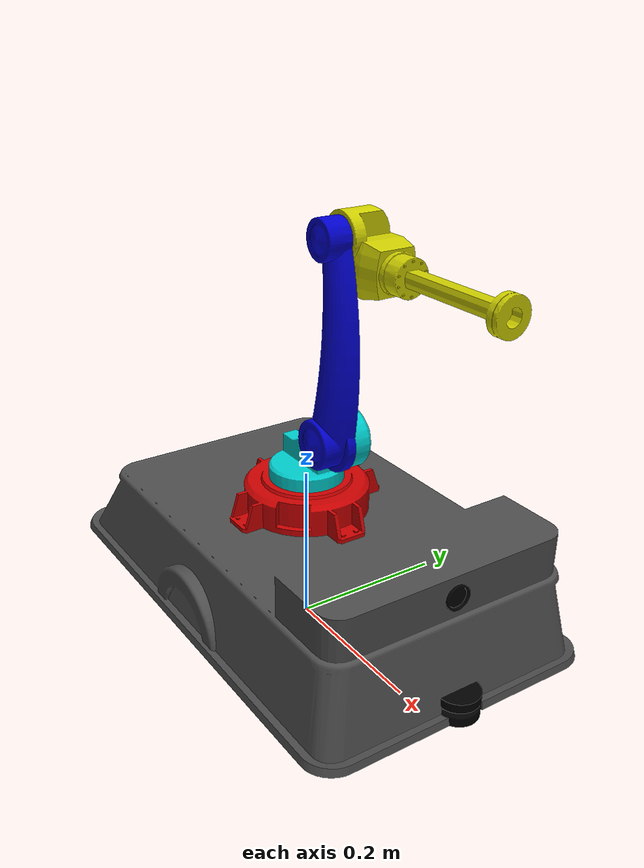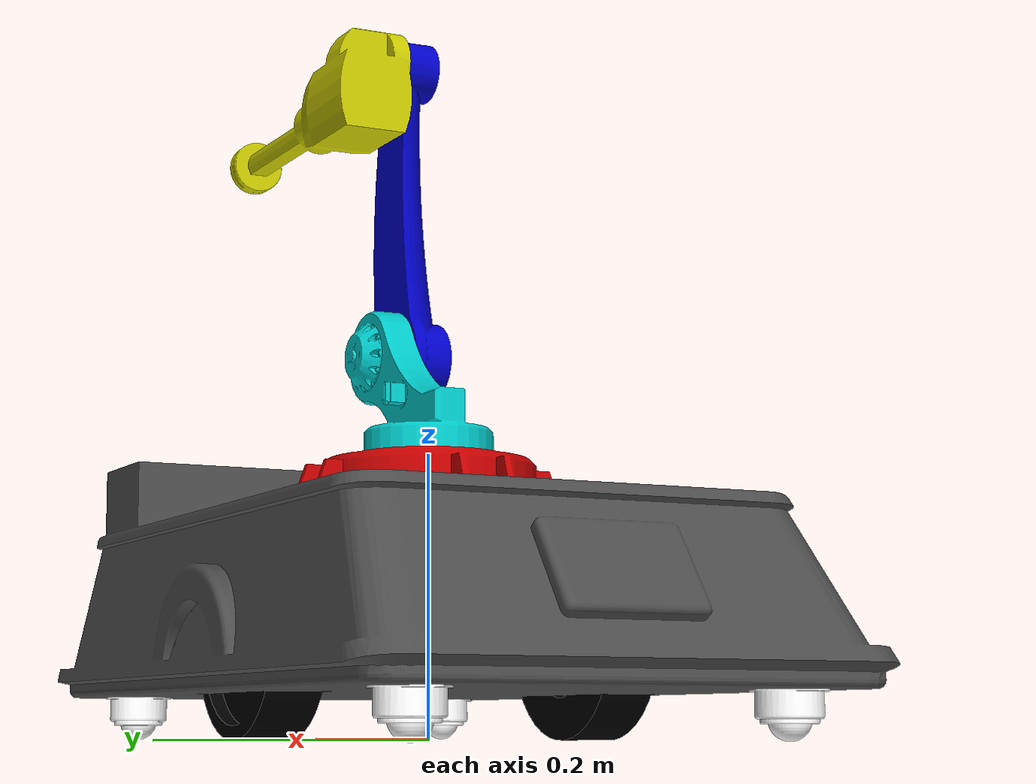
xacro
<?xml version="1.0" encoding="utf-8"?>

<robot name="my_robot" xmlns:xacro="http://www.ros.org/wiki/xacro">
  <xacro:include filename="gazebo_plugin.xacro" />
  <xacro:include filename="common_properties.xacro" />
  <xacro:include filename="sensor.xacro" />

  <link name="base_footprint"/>

  <link name="base_link">
    <inertial>
      <origin xyz="0.0258859914894434 3.29115135206288E-05 0.0298218101468012" rpy="0 0 0" />
      <mass value="12.1175273859003" />
      <inertia
        ixx="0.151183135861082"
        ixy="6.45365793468062E-05"
        ixz="-0.00229495720006062"
        iyy="0.366496182031275"
        iyz="-3.59840732929561E-06"
        izz="0.506268750088202" />
    </inertial>
    <visual>
      <origin xyz="0 0 0" rpy="0 0 0" />
      <geometry>
        <mesh filename="package://my_robot_description/meshes/base_link.STL" />
      </geometry>
      <material name="gray" />
    </visual>
    <collision>
      <origin xyz="0 0 0" rpy="0 0 0" />
      <geometry>
        <mesh filename="package://my_robot_description/meshes/base_link.STL" />
      </geometry>
    </collision>
  </link>

  <joint name="base_footprint_joint" type="fixed">
    <origin xyz="0 0 0.07" rpy="0 0 0" />
    <parent link="base_footprint" />
    <child link="base_link" />
    <axis xyz="0 0 0" />
  </joint>

  <link name="mat_trau1">
    <inertial>
      <origin xyz="0 0.0150076202241446 -2.77555756156289E-17" rpy="0 0 0" />
      <mass value="0.0343654070105222" />
      <inertia
        ixx="5.57345885585432E-06"
        ixy="-3.69458506277605E-22"
        ixz="4.5621677512871E-09"
        iyy="7.54003589309488E-06"
        iyz="8.77506497716904E-23"
        izz="5.86061271693657E-06" />
    </inertial>
    <visual>
      <origin xyz="0 0 0" rpy="0 0 0" />
      <geometry>
        <mesh filename="package://my_robot_description/meshes/mat_trau1.STL" />
      </geometry>
      <material name="white"/>
    </visual>
    <collision>
      <origin xyz="0 0 0" rpy="0 0 0" />
      <geometry>
        <mesh filename="package://my_robot_description/meshes/mat_trau1.STL" />
      </geometry>
    </collision>
  </link>

  <joint name="mat_trau1_joint" type="fixed">
    <origin xyz="-0.245 0.13 -0.0646" rpy="1.5707963267949 0 0" />
    <parent link="base_link" />
    <child link="mat_trau1" />
    <axis xyz="0 0 0" />
  </joint>

  <link name="mat_trau2">
    <inertial>
      <origin xyz="-2.77555756156289E-17 0.0150076202241446 0" rpy="0 0 0" />
      <mass value="0.0343654070105222" />
      <inertia
        ixx="5.57506973746302E-06"
        ixy="5.19498733814909E-22"
        ixz="2.19269083255048E-08"
        iyy="7.54003589309488E-06"
        iyz="1.18018593093102E-22"
        izz="5.85900183532788E-06" />
    </inertial>
    <visual>
      <origin xyz="0 0 0" rpy="0 0 0" />
      <geometry>
        <mesh filename="package://my_robot_description/meshes/mat_trau2.STL" />
      </geometry>
      <material name="white"/>
    </visual>
    <collision>
      <origin xyz="0 0 0" rpy="0 0 0" />
      <geometry>
        <mesh filename="package://my_robot_description/meshes/mat_trau2.STL" />
      </geometry>
    </collision>
  </link>

  <joint name="mat_trau2_joint" type="fixed">
    <origin xyz="-0.245 -0.13 -0.0646" rpy="1.5707963267949 0 0" />
    <parent link="base_link" />
    <child link="mat_trau2" />
    <axis xyz="0 0 0" />
  </joint>

  <link name="mat_trau3">
    <inertial>
      <origin xyz="0 0.0150076202241446 0" rpy="0 0 0" />
      <mass value="0.0343654070105222" />
      <inertia
        ixx="5.57447791879336E-06"
        ixy="-2.00711149933717E-22"
        ixz="-1.76749184706977E-08"
        iyy="7.54003589309488E-06"
        iyz="-3.68128463688666E-22"
        izz="5.85959365399754E-06" />
    </inertial>
    <visual>
      <origin xyz="0 0 0" rpy="0 0 0" />
      <geometry>
        <mesh filename="package://my_robot_description/meshes/mat_trau3.STL" />
      </geometry>
      <material name="white"/>
    </visual>
    <collision>
      <origin xyz="0 0 0" rpy="0 0 0" />
      <geometry>
        <mesh filename="package://my_robot_description/meshes/mat_trau3.STL" />
      </geometry>
    </collision>
  </link>

  <joint name="mat_trau3_joint" type="fixed">
    <origin xyz="0.245 0.13 -0.0646" rpy="1.5707963267949 0 3.14159265358979" />
    <parent link="base_link" />
    <child link="mat_trau3" />
    <axis xyz="0 0 0" />
  </joint>

  <link name="mat_trau4">
    <inertial>
      <origin xyz="0 0.0150076202241446 1.38777878078145E-17" rpy="0 0 0" />
      <mass value="0.0343654070105222" />
      <inertia
        ixx="5.57351483578567E-06"
        ixy="1.3638800286411E-21"
        ixz="-6.07330999259092E-09"
        iyy="7.54003589309489E-06"
        iyz="7.07475765544562E-22"
        izz="5.86055673700523E-06" />
    </inertial>
    <visual>
      <origin xyz="0 0 0" rpy="0 0 0" />
      <geometry>
        <mesh filename="package://my_robot_description/meshes/mat_trau4.STL" />
      </geometry>
      <material name="white"/>
    </visual>
    <collision>
      <origin xyz="0 0 0" rpy="0 0 0" />
      <geometry>
        <mesh filename="package://my_robot_description/meshes/mat_trau4.STL" />
      </geometry>
    </collision>
  </link>

  <joint name="mat_trau4_joint" type="fixed">
    <origin xyz="0.245 -0.13 -0.0646" rpy="1.5707963267949 0 0" />
    <parent link="base_link" />
    <child link="mat_trau4" />
    <axis xyz="0 0 0" />
  </joint>

  <link name="wheel_left">
    <inertial>
      <origin xyz="2.77555756156289E-17 1.38777878078145E-17 -0.0020997375328084" rpy="0 0 0" />
      <mass value="3.27664186778599" />
      <inertia
        ixx="0.00492194055077917"
        ixy="7.79375325238279E-36"
        ixz="-1.20236555294484E-19"
        iyy="0.00492194055077917"
        iyz="2.16752499564459E-35"
        izz="0.00923235234277544" />
    </inertial>
    <visual>
      <origin xyz="0 0 0" rpy="0 0 0" />
      <geometry>
        <mesh filename="package://my_robot_description/meshes/wheel_left.STL" />
      </geometry>
      <material name="black"/>
    </visual>
    <collision>
      <origin xyz="0 0 0" rpy="0 0 0" />
      <geometry>
        <mesh filename="package://my_robot_description/meshes/wheel_left.STL" />
      </geometry>
    </collision>
  </link>

  <joint name="wheel_left_joint" type="continuous">
    <origin xyz="0 0.125 0" rpy="-1.5707963267949 0 0" />
    <parent link="base_link" />
    <child link="wheel_left" />
    <axis xyz="0 0 1" />
  </joint>

  <link name="wheel_right">
    <inertial>
      <origin xyz="-3.46944695195361E-17 1.38777878078145E-17 0.00209973753280841" rpy="0 0 0" />
      <mass value="3.27664186778599" />
      <inertia
        ixx="0.00492194055077917"
        ixy="-8.64750795320387E-36"
        ixz="1.60107565717829E-19"
        iyy="0.00492194055077917"
        iyz="-1.7761033517363E-35"
        izz="0.00923235234277544" />
    </inertial>
    <visual>
      <origin xyz="0 0 0" rpy="0 0 0" />
      <geometry>
        <mesh filename="package://my_robot_description/meshes/wheel_right.STL" />
      </geometry>
      <material name="black"/>
    </visual>
    <collision>
      <origin xyz="0 0 0" rpy="0 0 0" />
      <geometry>
        <mesh filename="package://my_robot_description/meshes/wheel_right.STL" />
      </geometry>
    </collision>
  </link>

  <joint name="wheel_right_joint" type="continuous">
    <origin xyz="0 -0.125 0" rpy="-1.5707963267949 0 0" />
    <parent link="base_link" />
    <child link="wheel_right" />
    <axis xyz="0 0 1" />
  </joint>

  <link name="base_arm">
    <inertial>
      <origin xyz="-0.000589331553656623 0.000593644936279801 0.0195988345740246" rpy="0 0 0" />
      <mass value="3.04554845158525" />
      <inertia
        ixx="0.00506766212836476"
        ixy="-9.26393186495901E-05"
        ixz="4.76278920041951E-06"
        iyy="0.00506844405876871"
        iyz="-4.62751109468397E-06"
        izz="0.00928188680388851" />
    </inertial>
    <visual>
      <origin xyz="0 0 0" rpy="0 0 0" />
      <geometry>
        <mesh filename="package://my_robot_description/meshes/base_arm.STL" />
      </geometry>
      <material name="red"/>
    </visual>
    <collision>
      <origin xyz="0 0 0" rpy="0 0 0" />
      <geometry>
        <mesh filename="package://my_robot_description/meshes/base_arm.STL" />
      </geometry>
    </collision>
  </link>

  <joint name="base-arm_joint" type="fixed">
    <origin xyz="0 0 0.0868999999999999" rpy="0 0 0" />
    <parent link="base_link" />
    <child link="base_arm" />
    <axis xyz="0 0 0" />
  </joint>

  <link name="link_1">
    <inertial>
      <origin xyz="0.02944585784079 0.00219657121699991 0.0231723956643361" rpy="0 0 0" />
      <mass value="1.22391456338129" />
      <inertia
        ixx="0.00166651837484485"
        ixy="-7.58079735487005E-05"
        ixz="-0.00128605466917694"
        iyy="0.00333388932919255"
        iyz="-7.38478775409402E-05"
        izz="0.00229275089370262" />
    </inertial>
    <visual>
      <origin xyz="0 0 0" rpy="0 0 0" />
      <geometry>
        <mesh filename="package://my_robot_description/meshes/link_1.STL" />
      </geometry>
      <material name="green"/>
    </visual>
    <collision>
      <origin xyz="0 0 0" rpy="0 0 0" />
      <geometry>
        <mesh filename="package://my_robot_description/meshes/link_1.STL" />
      </geometry>
    </collision>
  </link>

  <joint name="link1_joint" type="revolute">
    <origin xyz="0 0 0.060928" rpy="0 0 0" />
    <parent link="base_arm" />
    <child link="link_1" />
    <axis xyz="0 0 1" />
    <limit lower="-3.14" upper="3.14" effort="1000" velocity="100" />
  </joint>

  <link name="link2">
    <inertial>
      <origin xyz="0.0870231547011709 -0.00584714538575998 -0.00464900223920332" rpy="0 0 0" />
      <mass value="1.33156714132357" />
      <inertia
        ixx="0.000398960186039968"
        ixy="0.000123357741247571"
        ixz="0.000158273369231038"
        iyy="0.00891691458485114"
        iyz="-9.54165448776688E-06"
        izz="0.00910988013359579" />
    </inertial>
    <visual>
      <origin xyz="0 0 0" rpy="0 0 0" />
      <geometry>
        <mesh filename="package://my_robot_description/meshes/link2.STL" />
      </geometry>
      <material name="blue"/>
    </visual>
    <collision>
      <origin xyz="0 0 0" rpy="0 0 0" />
      <geometry>
        <mesh filename="package://my_robot_description/meshes/link2.STL" />
      </geometry>
    </collision>
  </link>

  <joint name="link2-joint" type="revolute">
    <origin xyz="0.0768 -0.026432 0.062976" rpy="1.5708 ${-pi/2} 0" />
    <parent link="link_1" />
    <child link="link2" />
    <axis xyz="0 0 1" />
    <limit lower="-${pi}" upper="0" effort="100" velocity="100" />
  </joint>

  <link name="link3">
    <inertial>
      <origin xyz="0.0338660976398994 -0.0246905602985778 -0.0467064010746408" rpy="0 0 0" />
      <mass value="1.54053326228132" />
      <inertia
        ixx="0.000862454353407488"
        ixy="0.000201291691291279"
        ixz="5.28927353860731E-05"
        iyy="0.00568959662915205"
        iyz="-5.13820660644454E-05"
        izz="0.00587994063665471" />
    </inertial>
    <visual>
      <origin xyz="0 0 0" rpy="0 0 0" />
      <geometry>
        <mesh filename="package://my_robot_description/meshes/link3.STL" />
      </geometry>
      <material name="yellow"/>
    </visual>
    <collision>
      <origin xyz="0 0 0" rpy="0 0 0" />
      <geometry>
        <mesh filename="package://my_robot_description/meshes/link3.STL" />
      </geometry>
    </collision>
  </link>

  <joint name="link3_joint" type="revolute">
    <origin xyz="0.224 0 0" rpy="0 0 ${-pi/2}" />
    <parent link="link2" />
    <child link="link3" />
    <axis xyz="0 0 1" />
    <limit lower="-3.14" upper="3.14" effort="0" velocity="0" />
  </joint>

  <link name="ef"></link>
  <joint name="ef_joint" type="fixed">
    <origin xyz="0.2208 -0.0288 -0.047693" rpy="0 0 0" />
    <parent link="link3" />
    <child link="ef" />
    <axis xyz="0 0 0" />
  </joint>

</robot>

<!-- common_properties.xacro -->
<robot xmlns:xacro="http://www.ros.org/wiki/xacro">

    <material name="blue">
        <color rgba="0 0 0.8 1" />
    </material>

    <material name="red">
        <color rgba="0.8 0 0 1" />
    </material>

    <material name="green">
        <color rgba="0 0.8 0.8 1" />
    </material>

    <material name="yellow">
        <color rgba="0.8 0.8 0 1" />
    </material>

    <material name="white">
        <color rgba="1 1 1 1" />
    </material>

    <material name="black">
        <color rgba="0 0 0 1" />
    </material>

    <material name="gray">
        <color rgba="0.3 0.3 0.3 1" />
    </material>
</robot>

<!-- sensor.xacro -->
<robot xmlns:xacro="http://www.ros.org/wiki/xacro">

    <link name="lidar">
        <inertial>
            <origin xyz="-0.0010055028634155 -1.38777878078145E-17 0" rpy="0 0 0" />
            <mass value="0.0538504786266007" />
            <inertia
            ixx="1.27953735055269E-05"
            ixy="-3.05848280509995E-22"
            ixz="5.68426024204498E-22"
            iyy="1.27489111838795E-05"
            iyz="1.67485662530733E-22"
            izz="1.6731457579019E-05" />
        </inertial>
        <visual>
            <origin xyz="0 0 0" rpy="0 0 0" />
            <geometry>
                <mesh filename="package://my_robot_description/meshes/lidar.STL" />
            </geometry>
            <material name="black"/>
        </visual>
        <collision>
            <origin xyz="0 0 0" rpy="0 0 0" />
            <geometry>
                <mesh filename="package://my_robot_description/meshes/lidar.STL" />
            </geometry>
        </collision>
    </link>

    <joint name="lidar_joint" type="fixed">
        <origin xyz="0.295 0 -0.013" rpy="0 0 0" />
        <parent link="base_link" />
        <child link="lidar" />
        <axis xyz="0 0 0" />
    </joint>

    <link name="camera">
        <inertial>
            <origin xyz="-0.00796171978986315 3.46944695195361E-18 0" rpy="0 0 0" />
            <mass value="0.0127082141735527" />
            <inertia
            ixx="1.48054571752202E-06"
            ixy="1.05501143973999E-22"
            ixz="-5.93732576439531E-39"
            iyy="1.09412938905004E-06"
            iyz="8.92344345590171E-40"
            izz="1.09412938905004E-06" />
        </inertial>
        <visual>
            <origin xyz="0 0 0" rpy="0 0 0" />
            <geometry>
            <mesh filename="package://my_robot_description/meshes/camera.STL" />
            </geometry>
            <material name="black"/>
        </visual>
        <collision>
            <origin xyz="0 0 0" rpy="0 0 0" />
            <geometry>
                <mesh filename="package://my_robot_description/meshes/camera.STL" />
            </geometry>
        </collision>
    </link>

    <joint name="camera_joint" type="fixed">
        <origin xyz="0.281 0 0.1119" rpy="0 0 0" />
        <parent link="base_link" />
        <child link="camera" />
        <axis xyz="0 0 0" />
    </joint>

    <link name="imu"></link>
    <joint name="imu_joint" type="fixed">
        <origin xyz="0 0 0" rpy="0 0 0" />
        <parent link="base_link" />
        <child link="imu" />
        <axis xyz="0 0 0" />
    </joint>
</robot>
